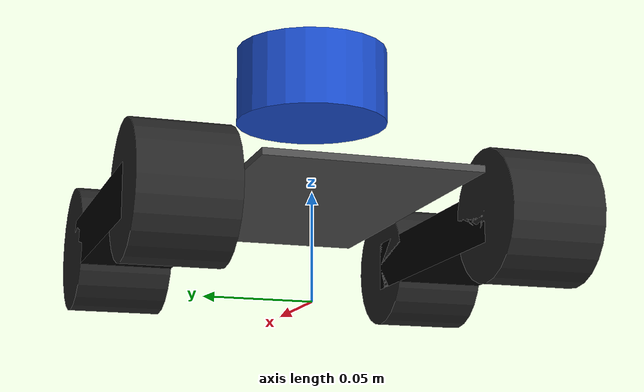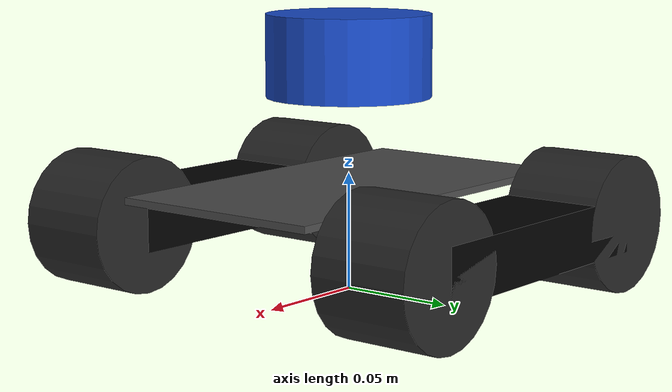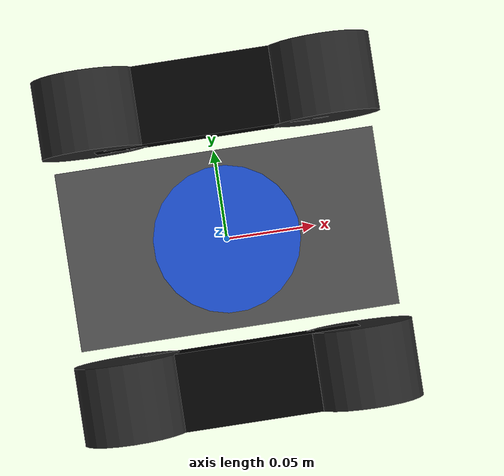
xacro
<?xml version="1.0"?>
<robot xmlns:xacro="http://www.ros.org/wiki/xacro" name="slamrobot">

  <!--
    Tracked robot model for RViz2 RobotModel.
    - Body (chassis) is a box
    - Each track is represented as 2 cylinders with a box between them
  -->

  <xacro:arg name="track_separation" default="0.155" />
  <xacro:arg name="track_contact_length" default="0.127" />
  <xacro:arg name="track_overall_length" default="0.185" />
  <xacro:arg name="track_width" default="0.042" />
  <xacro:arg name="track_height" default="0.058" />
  <xacro:arg name="chassis_length" default="0.170" />
  <xacro:arg name="chassis_width" default="0.095" />
  <xacro:arg name="chassis_height" default="0.003" />
  <xacro:arg name="base_link_z" default="0.0445" />
  <xacro:arg name="lidar_x" default="0.0" />
  <xacro:arg name="lidar_y" default="0.0" />
  <xacro:arg name="lidar_z" default="0.0555" />
  <xacro:arg name="lidar_yaw" default="${pi - 7*pi/180}" /> <!-- 173 degrees -->

  <xacro:arg name="imu_x" default="0.065" />
  <xacro:arg name="imu_y" default="-0.035" />
  <xacro:arg name="imu_z" default="0.08" />
  <xacro:arg name="imu_roll" default="0.0" />
  <xacro:arg name="imu_pitch" default="0.0" />
  <xacro:arg name="imu_yaw" default="-1.5707963" />

  <xacro:property name="track_separation" value="$(arg track_separation)" />
  <xacro:property name="track_contact_length" value="$(arg track_contact_length)" />
  <xacro:property name="track_overall_length" value="$(arg track_overall_length)" />
  <xacro:property name="track_width" value="$(arg track_width)" />
  <xacro:property name="track_height" value="$(arg track_height)" />
  <xacro:property name="chassis_length" value="$(arg chassis_length)" />
  <xacro:property name="chassis_width" value="$(arg chassis_width)" />
  <xacro:property name="chassis_height" value="$(arg chassis_height)" />
  <xacro:property name="base_link_z" value="$(arg base_link_z)" />
  <xacro:property name="lidar_x" value="$(arg lidar_x)" />
  <xacro:property name="lidar_y" value="$(arg lidar_y)" />
  <xacro:property name="lidar_z" value="$(arg lidar_z)" />
  <xacro:property name="lidar_yaw" value="$(arg lidar_yaw)" />
  <xacro:property name="imu_x" value="$(arg imu_x)" />
  <xacro:property name="imu_y" value="$(arg imu_y)" />
  <xacro:property name="imu_z" value="$(arg imu_z)" />
  <xacro:property name="imu_roll" value="$(arg imu_roll)" />
  <xacro:property name="imu_pitch" value="$(arg imu_pitch)" />
  <xacro:property name="imu_yaw" value="$(arg imu_yaw)" />

  <xacro:property name="wheel_radius" value="${track_height/2.0}" />
  <xacro:property name="wheel_length" value="${track_width}" />
  <xacro:property name="track_box_length" value="${track_contact_length}" />
  <xacro:property name="track_box_width" value="${track_width}" />
  <xacro:property name="track_box_height" value="${track_height * 0.4}" />

  <material name="chassis_dark">
    <color rgba="0.30 0.30 0.30 1.0" />
  </material>
  <material name="track_black">
    <color rgba="0.01 0.01 0.01 1.0" />
  </material>
  <material name="wheel_gray">
    <color rgba="0.15 0.15 0.15 1.0" />
  </material>
  <material name="lidar_blue">
    <color rgba="0.1 0.3 0.8 1.0" />
  </material>

  <link name="base_footprint" />

  <joint name="base_footprint_to_base_link" type="fixed">
    <parent link="base_footprint" />
    <child link="base_link" />
    <origin xyz="0 0 ${base_link_z}" rpy="0 0 0" />
  </joint>

  <!-- Robot body is a box -->
  <link name="base_link">
    <visual>
      <origin xyz="0 0 0" rpy="0 0 0" />
      <geometry>
        <box size="${chassis_length} ${chassis_width} ${chassis_height}" />
      </geometry>
      <material name="chassis_dark" />
    </visual>
    <collision>
      <origin xyz="0 0 0" rpy="0 0 0" />
      <geometry>
        <box size="${chassis_length} ${chassis_width} ${chassis_height}" />
      </geometry>
    </collision>
    <inertial>
      <origin xyz="0 0 0" rpy="0 0 0" />
      <mass value="0.6" />
      <inertia ixx="0.004" ixy="0" ixz="0" iyy="0.006" iyz="0" izz="0.008" />
    </inertial>
  </link>

  <xacro:macro name="track" params="name y">
    <xacro:property name="wheel_x_offset" value="${track_contact_length/2.0}" />
    <xacro:property name="wheel_z" value="${-track_height/4.0}" />

    <!-- Front cylinder -->
    <link name="${name}_front_wheel">
      <visual>
        <origin xyz="0 0 0" rpy="${pi/2.0} 0 0" />
        <geometry>
          <cylinder radius="${wheel_radius}" length="${wheel_length}" />
        </geometry>
        <material name="wheel_gray" />
      </visual>
      <collision>
        <origin xyz="0 0 0" rpy="${pi/2.0} 0 0" />
        <geometry>
          <cylinder radius="${wheel_radius}" length="${wheel_length}" />
        </geometry>
      </collision>
    </link>
    <joint name="base_link_to_${name}_front_wheel" type="fixed">
      <parent link="base_link" />
      <child link="${name}_front_wheel" />
      <origin xyz="${wheel_x_offset} ${y} ${wheel_z}" rpy="0 0 0" />
    </joint>

    <!-- Rear cylinder -->
    <link name="${name}_rear_wheel">
      <visual>
        <origin xyz="0 0 0" rpy="${pi/2.0} 0 0" />
        <geometry>
          <cylinder radius="${wheel_radius}" length="${wheel_length}" />
        </geometry>
        <material name="wheel_gray" />
      </visual>
      <collision>
        <origin xyz="0 0 0" rpy="${pi/2.0} 0 0" />
        <geometry>
          <cylinder radius="${wheel_radius}" length="${wheel_length}" />
        </geometry>
      </collision>
    </link>
    <joint name="base_link_to_${name}_rear_wheel" type="fixed">
      <parent link="base_link" />
      <child link="${name}_rear_wheel" />
      <origin xyz="${-wheel_x_offset} ${y} ${wheel_z}" rpy="0 0 0" />
    </joint>

    <!-- Box between the two cylinders to represent the track belt -->
    <link name="${name}_belt">
      <visual>
        <origin xyz="0 0 0" rpy="0 0 0" />
        <geometry>
          <box size="${track_box_length} ${track_box_width} ${track_box_height}" />
        </geometry>
        <material name="track_black" />
      </visual>
      <collision>
        <origin xyz="0 0 0" rpy="0 0 0" />
        <geometry>
          <box size="${track_box_length} ${track_box_width} ${track_box_height}" />
        </geometry>
      </collision>
    </link>
    <joint name="base_link_to_${name}_belt" type="fixed">
      <parent link="base_link" />
      <child link="${name}_belt" />
      <origin xyz="0 ${y} ${wheel_z}" rpy="0 0 0" />
    </joint>
  </xacro:macro>

  <xacro:track name="left_track" y="0.0775" />
  <xacro:track name="right_track" y="-0.0775" />

  <link name="lidar_link">
    <visual>
      <origin xyz="0 0 0" rpy="0 0 0" />
      <geometry>
        <cylinder radius="0.035" length="0.035" />
      </geometry>
      <material name="lidar_blue" />
    </visual>
    <collision>
      <origin xyz="0 0 0" rpy="0 0 0" />
      <geometry>
        <cylinder radius="0.035" length="0.035" />
      </geometry>
    </collision>
  </link>

  <joint name="base_link_to_lidar_link" type="fixed">
    <parent link="base_link" />
    <child link="lidar_link" />
    <origin xyz="${lidar_x} ${lidar_y} ${lidar_z}" rpy="0 0 ${lidar_yaw}" />
  </joint>

  <link name="imu_link" />

  <joint name="base_link_to_imu_link" type="fixed">
    <parent link="base_link" />
    <child link="imu_link" />
    <origin xyz="${imu_x} ${imu_y} ${imu_z}" rpy="${imu_roll} ${imu_pitch} ${imu_yaw}" />
  </joint>
</robot>
